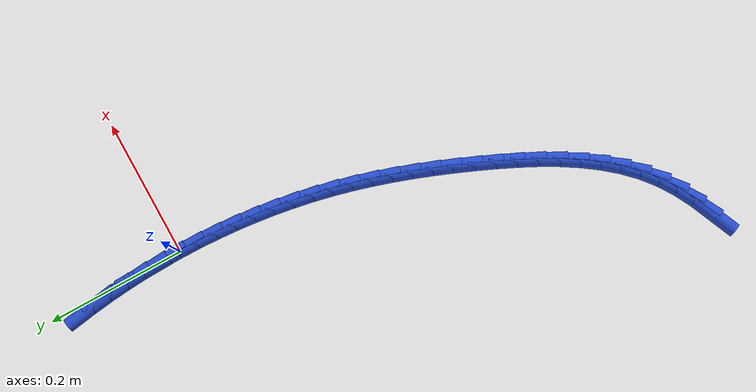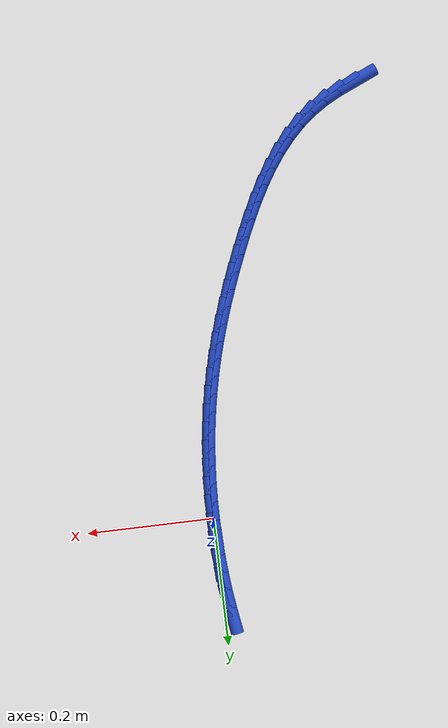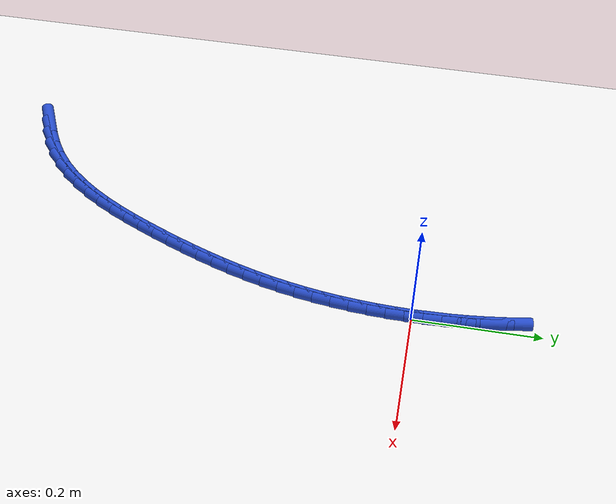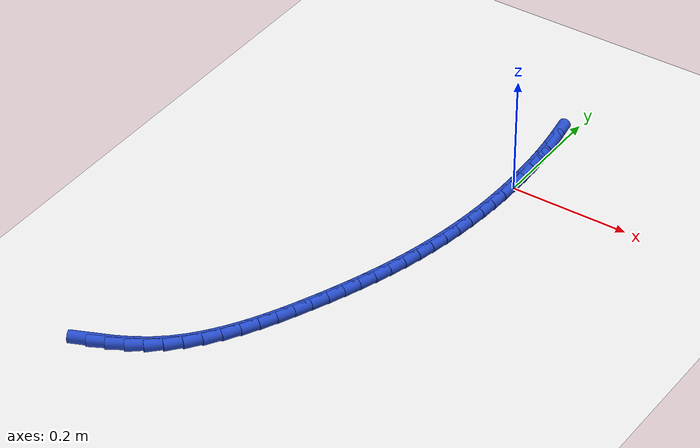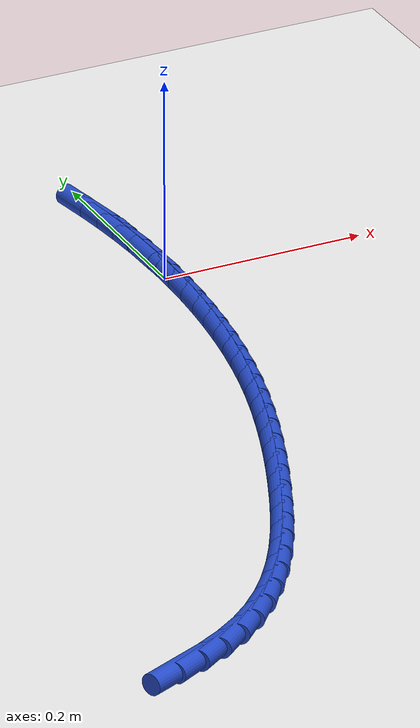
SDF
<sdf version="1.6">
 <world name="default">
  <model name="ground_plane">
   <static>1</static>
   <link name="link">
    <collision name="collision">
     <geometry><plane><normal>0 0 1</normal><size>100 100</size></plane></geometry>
     <surface><friction><ode><mu>100</mu><mu2>50</mu2></ode></friction></surface>
    </collision>
    <visual name="visual">
     <cast_shadows>0</cast_shadows>
     <geometry><plane><normal>0 0 1</normal><size>100 100</size></plane></geometry>
     <material>
      <script><uri>file://media/materials/scripts/gazebo.material</uri><name>Gazebo/WhiteGlow</name></script>
     </material>
    </visual>
   </link>
  </model>
  <model name="line">
   <link name="link_0">
    <pose>-3.0357660829594124e-18 -2.0816681711721685e-17 0.01 0 1.57 -1.5565837611192304</pose>
    <collision name="collision">
     <geometry><cylinder><radius>0.01</radius><length>0.08</length></cylinder></geometry>
    </collision>
    <visual name="visual">
     <material>
      <script><name>Gazebo/Blue</name><uri>file://media/materials/scripts/gazebo.material</uri></script>
     </material>
     <geometry><cylinder><radius>0.01</radius><length>0.08</length></cylinder></geometry>
    </visual>
   </link>
   <link name="link_1">
    <pose>-0.0004041169483302845 0.028431864242184076 0.01 0 1.57 -1.5284859204774366</pose>
    <collision name="collision">
     <geometry><cylinder><radius>0.01</radius><length>0.08</length></cylinder></geometry>
    </collision>
    <visual name="visual">
     <material>
      <script><name>Gazebo/Blue</name><uri>file://media/materials/scripts/gazebo.material</uri></script>
     </material>
     <geometry><cylinder><radius>0.01</radius><length>0.08</length></cylinder></geometry>
    </visual>
   </link>
   <link name="link_2">
    <pose>-0.0016050707239647663 0.056799283920314324 0.01 0 1.57 -1.5001406819887342</pose>
    <collision name="collision">
     <geometry><cylinder><radius>0.01</radius><length>0.08</length></cylinder></geometry>
    </collision>
    <visual name="visual">
     <material>
      <script><name>Gazebo/Blue</name><uri>file://media/materials/scripts/gazebo.material</uri></script>
     </material>
     <geometry><cylinder><radius>0.01</radius><length>0.08</length></cylinder></geometry>
    </visual>
   </link>
   <link name="link_3">
    <pose>-0.0036085361440548755 0.08510743116033789 0.01 0 1.57 -1.4716096335745636</pose>
    <collision name="collision">
     <geometry><cylinder><radius>0.01</radius><length>0.08</length></cylinder></geometry>
    </collision>
    <visual name="visual">
     <material>
      <script><name>Gazebo/Blue</name><uri>file://media/materials/scripts/gazebo.material</uri></script>
     </material>
     <geometry><cylinder><radius>0.01</radius><length>0.08</length></cylinder></geometry>
    </visual>
   </link>
   <link name="link_4">
    <pose>-0.006420188025752031 0.11336147808820196 0.01 0 1.57 -1.442956377245693</pose>
    <collision name="collision">
     <geometry><cylinder><radius>0.01</radius><length>0.08</length></cylinder></geometry>
    </collision>
    <visual name="visual">
     <material>
      <script><name>Gazebo/Blue</name><uri>file://media/materials/scripts/gazebo.material</uri></script>
     </material>
     <geometry><cylinder><radius>0.01</radius><length>0.08</length></cylinder></geometry>
    </visual>
   </link>
   <link name="link_5">
    <pose>-0.010045701186207663 0.14156659682985365 0.01 0 1.57 -1.4142457848235797</pose>
    <collision name="collision">
     <geometry><cylinder><radius>0.01</radius><length>0.08</length></cylinder></geometry>
    </collision>
    <visual name="visual">
     <material>
      <script><name>Gazebo/Blue</name><uri>file://media/materials/scripts/gazebo.material</uri></script>
     </material>
     <geometry><cylinder><radius>0.01</radius><length>0.08</length></cylinder></geometry>
    </visual>
   </link>
   <link name="link_263">
    <pose>-0.30598803627297033 -0.6657665539885202 0.01 0 1.57 0.4091721516461268</pose>
    <collision name="collision">
     <geometry><cylinder><radius>0.01</radius><length>0.08</length></cylinder></geometry>
    </collision>
    <visual name="visual">
     <material>
      <script><name>Gazebo/Blue</name><uri>file://media/materials/scripts/gazebo.material</uri></script>
     </material>
     <geometry><cylinder><radius>0.01</radius><length>0.08</length></cylinder></geometry>
    </visual>
   </link>
   <link name="link_264">
    <pose>-0.27999523678142824 -0.6544948459956088 0.01 0 1.57 0.4852670989772613</pose>
    <collision name="collision">
     <geometry><cylinder><radius>0.01</radius><length>0.08</length></cylinder></geometry>
    </collision>
    <visual name="visual">
     <material>
      <script><name>Gazebo/Blue</name><uri>file://media/materials/scripts/gazebo.material</uri></script>
     </material>
     <geometry><cylinder><radius>0.01</radius><length>0.08</length></cylinder></geometry>
    </visual>
   </link>
   <link name="link_265">
    <pose>-0.25532490465593866 -0.6414855881476383 0.01 0 1.57 0.5797110865254966</pose>
    <collision name="collision">
     <geometry><cylinder><radius>0.01</radius><length>0.08</length></cylinder></geometry>
    </collision>
    <visual name="visual">
     <material>
      <script><name>Gazebo/Blue</name><uri>file://media/materials/scripts/gazebo.material</uri></script>
     </material>
     <geometry><cylinder><radius>0.01</radius><length>0.08</length></cylinder></geometry>
    </visual>
   </link>
   <link name="link_266">
    <pose>-0.2322363259612794 -0.6263682119845824 0.01 0 1.57 0.6879322324826481</pose>
    <collision name="collision">
     <geometry><cylinder><radius>0.01</radius><length>0.08</length></cylinder></geometry>
    </collision>
    <visual name="visual">
     <material>
      <script><name>Gazebo/Blue</name><uri>file://media/materials/scripts/gazebo.material</uri></script>
     </material>
     <geometry><cylinder><radius>0.01</radius><length>0.08</length></cylinder></geometry>
    </visual>
   </link>
   <link name="link_267">
    <pose>-0.21093467268957697 -0.6088611130804109 0.01 0 1.57 0.7893013018491452</pose>
    <collision name="collision">
     <geometry><cylinder><radius>0.01</radius><length>0.08</length></cylinder></geometry>
    </collision>
    <visual name="visual">
     <material>
      <script><name>Gazebo/Blue</name><uri>file://media/materials/scripts/gazebo.material</uri></script>
     </material>
     <geometry><cylinder><radius>0.01</radius><length>0.08</length></cylinder></geometry>
    </visual>
   </link>
   <link name="link_268">
    <pose>-0.19135453436946342 -0.5891275270719579 0.01 0 1.57 0.8771481950598081</pose>
    <collision name="collision">
     <geometry><cylinder><radius>0.01</radius><length>0.08</length></cylinder></geometry>
    </collision>
    <visual name="visual">
     <material>
      <script><name>Gazebo/Blue</name><uri>file://media/materials/scripts/gazebo.material</uri></script>
     </material>
     <geometry><cylinder><radius>0.01</radius><length>0.08</length></cylinder></geometry>
    </visual>
   </link>
   <link name="link_269">
    <pose>-0.17334610118036284 -0.567469442903727 0.01 0 1.57 0.9517537637834611</pose>
    <collision name="collision">
     <geometry><cylinder><radius>0.01</radius><length>0.08</length></cylinder></geometry>
    </collision>
    <visual name="visual">
     <material>
      <script><name>Gazebo/Blue</name><uri>file://media/materials/scripts/gazebo.material</uri></script>
     </material>
     <geometry><cylinder><radius>0.01</radius><length>0.08</length></cylinder></geometry>
    </visual>
   </link>
   <link name="link_270">
    <pose>-0.15675953549017177 -0.5441888952426291 0.01 0 1.57 1.013984246985781</pose>
    <collision name="collision">
     <geometry><cylinder><radius>0.01</radius><length>0.08</length></cylinder></geometry>
    </collision>
    <visual name="visual">
     <material>
      <script><name>Gazebo/Blue</name><uri>file://media/materials/scripts/gazebo.material</uri></script>
     </material>
     <geometry><cylinder><radius>0.01</radius><length>0.08</length></cylinder></geometry>
    </visual>
   </link>
   <link name="link_271">
    <pose>-0.14144499966678697 -0.5195879187555755 0.01 0 1.57 1.064910814177203</pose>
    <collision name="collision">
     <geometry><cylinder><radius>0.01</radius><length>0.08</length></cylinder></geometry>
    </collision>
    <visual name="visual">
     <material>
      <script><name>Gazebo/Blue</name><uri>file://media/materials/scripts/gazebo.material</uri></script>
     </material>
     <geometry><cylinder><radius>0.01</radius><length>0.08</length></cylinder></geometry>
    </visual>
   </link>
   <link name="link_272">
    <pose>-0.1272526560781052 -0.49396854810947743 0.01 0 1.57 1.1055666043617902</pose>
    <collision name="collision">
     <geometry><cylinder><radius>0.01</radius><length>0.08</length></cylinder></geometry>
    </collision>
    <visual name="visual">
     <material>
      <script><name>Gazebo/Blue</name><uri>file://media/materials/scripts/gazebo.material</uri></script>
     </material>
     <geometry><cylinder><radius>0.01</radius><length>0.08</length></cylinder></geometry>
    </visual>
   </link>
   <link name="link_273">
    <pose>-0.11403266709202302 -0.4676328179712454 0.01 0 1.57 1.1368089499028444</pose>
    <collision name="collision">
     <geometry><cylinder><radius>0.01</radius><length>0.08</length></cylinder></geometry>
    </collision>
    <visual name="visual">
     <material>
      <script><name>Gazebo/Blue</name><uri>file://media/materials/scripts/gazebo.material</uri></script>
     </material>
     <geometry><cylinder><radius>0.01</radius><length>0.08</length></cylinder></geometry>
    </visual>
   </link>
   <link name="link_274">
    <pose>-0.10163519507643717 -0.44088276300779083 0.01 0 1.57 1.1592637409915667</pose>
    <collision name="collision">
     <geometry><cylinder><radius>0.01</radius><length>0.08</length></cylinder></geometry>
    </collision>
    <visual name="visual">
     <material>
      <script><name>Gazebo/Blue</name><uri>file://media/materials/scripts/gazebo.material</uri></script>
     </material>
     <geometry><cylinder><radius>0.01</radius><length>0.08</length></cylinder></geometry>
    </visual>
   </link>
   <link name="link_275">
    <pose>-0.08991073016473373 -0.4140197923707082 0.01 0 1.57 1.1764149609841157</pose>
    <collision name="collision">
     <geometry><cylinder><radius>0.01</radius><length>0.08</length></cylinder></geometry>
    </collision>
    <visual name="visual">
     <material>
      <script><name>Gazebo/Blue</name><uri>file://media/materials/scripts/gazebo.material</uri></script>
     </material>
     <geometry><cylinder><radius>0.01</radius><length>0.08</length></cylinder></geometry>
    </visual>
   </link>
   <link name="link_276">
    <pose>-0.07876517675772612 -0.38723956132914605 0.01 0 1.57 1.1950383231286983</pose>
    <collision name="collision">
     <geometry><cylinder><radius>0.01</radius><length>0.08</length></cylinder></geometry>
    </collision>
    <visual name="visual">
     <material>
      <script><name>Gazebo/Blue</name><uri>file://media/materials/scripts/gazebo.material</uri></script>
     </material>
     <geometry><cylinder><radius>0.01</radius><length>0.08</length></cylinder></geometry>
    </visual>
   </link>
   <link name="link_277">
    <pose>-0.06822179059373532 -0.36051376911840605 0.01 0 1.57 1.2159693091393993</pose>
    <collision name="collision">
     <geometry><cylinder><radius>0.01</radius><length>0.08</length></cylinder></geometry>
    </collision>
    <visual name="visual">
     <material>
      <script><name>Gazebo/Blue</name><uri>file://media/materials/scripts/gazebo.material</uri></script>
     </material>
     <geometry><cylinder><radius>0.01</radius><length>0.08</length></cylinder></geometry>
    </visual>
   </link>
   <link name="link_278">
    <pose>-0.0583187752735957 -0.33378558812378384 0.01 0 1.57 1.2391570610409284</pose>
    <collision name="collision">
     <geometry><cylinder><radius>0.01</radius><length>0.08</length></cylinder></geometry>
    </collision>
    <visual name="visual">
     <material>
      <script><name>Gazebo/Blue</name><uri>file://media/materials/scripts/gazebo.material</uri></script>
     </material>
     <geometry><cylinder><radius>0.01</radius><length>0.08</length></cylinder></geometry>
    </visual>
   </link>
   <link name="link_279">
    <pose>-0.04909433439814172 -0.3069981907305756 0.01 0 1.57 1.2645173472949855</pose>
    <collision name="collision">
     <geometry><cylinder><radius>0.01</radius><length>0.08</length></cylinder></geometry>
    </collision>
    <visual name="visual">
     <material>
      <script><name>Gazebo/Blue</name><uri>file://media/materials/scripts/gazebo.material</uri></script>
     </material>
     <geometry><cylinder><radius>0.01</radius><length>0.08</length></cylinder></geometry>
    </visual>
   </link>
   <link name="link_280">
    <pose>-0.040586671568208006 -0.2800947493240781 0.01 0 1.57 1.2919302297459716</pose>
    <collision name="collision">
     <geometry><cylinder><radius>0.01</radius><length>0.08</length></cylinder></geometry>
    </collision>
    <visual name="visual">
     <material>
      <script><name>Gazebo/Blue</name><uri>file://media/materials/scripts/gazebo.material</uri></script>
     </material>
     <geometry><cylinder><radius>0.01</radius><length>0.08</length></cylinder></geometry>
    </visual>
   </link>
   <link name="link_281">
    <pose>-0.03283399038462841 -0.2530184362895855 0.01 0 1.57 1.321238979563653</pose>
    <collision name="collision">
     <geometry><cylinder><radius>0.01</radius><length>0.08</length></cylinder></geometry>
    </collision>
    <visual name="visual">
     <material>
      <script><name>Gazebo/Blue</name><uri>file://media/materials/scripts/gazebo.material</uri></script>
     </material>
     <geometry><cylinder><radius>0.01</radius><length>0.08</length></cylinder></geometry>
    </visual>
   </link>
   <link name="link_282">
    <pose>-0.025874494448237622 -0.22571242401239458 0.01 0 1.57 1.352160594603671</pose>
    <collision name="collision">
     <geometry><cylinder><radius>0.01</radius><length>0.08</length></cylinder></geometry>
    </collision>
    <visual name="visual">
     <material>
      <script><name>Gazebo/Blue</name><uri>file://media/materials/scripts/gazebo.material</uri></script>
     </material>
     <geometry><cylinder><radius>0.01</radius><length>0.08</length></cylinder></geometry>
    </visual>
   </link>
   <link name="link_283">
    <pose>-0.019744673474925145 -0.19812390261477453 0.01 0 1.57 1.3832471882823167</pose>
    <collision name="collision">
     <geometry><cylinder><radius>0.01</radius><length>0.08</length></cylinder></geometry>
    </collision>
    <visual name="visual">
     <material>
      <script><name>Gazebo/Blue</name><uri>file://media/materials/scripts/gazebo.material</uri></script>
     </material>
     <geometry><cylinder><radius>0.01</radius><length>0.08</length></cylinder></geometry>
    </visual>
   </link>
   <link name="link_284">
    <pose>-0.01445629780432286 -0.17025801007146876 0.01 0 1.57 1.4135785395463123</pose>
    <collision name="collision">
     <geometry><cylinder><radius>0.01</radius><length>0.08</length></cylinder></geometry>
    </collision>
    <visual name="visual">
     <material>
      <script><name>Gazebo/Blue</name><uri>file://media/materials/scripts/gazebo.material</uri></script>
     </material>
     <geometry><cylinder><radius>0.01</radius><length>0.08</length></cylinder></geometry>
    </visual>
   </link>
   <link name="link_285">
    <pose>-0.010002571221197477 -0.1421634085938791 0.01 0 1.57 1.4432343588047882</pose>
    <collision name="collision">
     <geometry><cylinder><radius>0.01</radius><length>0.08</length></cylinder></geometry>
    </collision>
    <visual name="visual">
     <material>
      <script><name>Gazebo/Blue</name><uri>file://media/materials/scripts/gazebo.material</uri></script>
     </material>
     <geometry><cylinder><radius>0.01</radius><length>0.08</length></cylinder></geometry>
    </visual>
   </link>
   <link name="link_286">
    <pose>-0.006376245879328298 -0.11388981911938623 0.01 0 1.57 1.472316989475469</pose>
    <collision name="collision">
     <geometry><cylinder><radius>0.01</radius><length>0.08</length></cylinder></geometry>
    </collision>
    <visual name="visual">
     <material>
      <script><name>Gazebo/Blue</name><uri>file://media/materials/scripts/gazebo.material</uri></script>
     </material>
     <geometry><cylinder><radius>0.01</radius><length>0.08</length></cylinder></geometry>
    </visual>
   </link>
   <link name="link_287">
    <pose>-0.0035700739324946514 -0.08548696258537108 0.01 0 1.57 1.500927856748419</pose>
    <collision name="collision">
     <geometry><cylinder><radius>0.01</radius><length>0.08</length></cylinder></geometry>
    </collision>
    <visual name="visual">
     <material>
      <script><name>Gazebo/Blue</name><uri>file://media/materials/scripts/gazebo.material</uri></script>
     </material>
     <geometry><cylinder><radius>0.01</radius><length>0.08</length></cylinder></geometry>
    </visual>
   </link>
   <link name="link_288">
    <pose>-0.0015768075344758448 -0.0570045599292145 0.01 0 1.57 1.5291677803969173</pose>
    <collision name="collision">
     <geometry><cylinder><radius>0.01</radius><length>0.08</length></cylinder></geometry>
    </collision>
    <visual name="visual">
     <material>
      <script><name>Gazebo/Blue</name><uri>file://media/materials/scripts/gazebo.material</uri></script>
     </material>
     <geometry><cylinder><radius>0.01</radius><length>0.08</length></cylinder></geometry>
    </visual>
   </link>
   <link name="link_289">
    <pose>-0.00038919883905119213 -0.028492332088297205 0.01 0 1.57 1.5571374015178738</pose>
    <collision name="collision">
     <geometry><cylinder><radius>0.01</radius><length>0.08</length></cylinder></geometry>
    </collision>
    <visual name="visual">
     <material>
      <script><name>Gazebo/Blue</name><uri>file://media/materials/scripts/gazebo.material</uri></script>
     </material>
     <geometry><cylinder><radius>0.01</radius><length>0.08</length></cylinder></geometry>
    </visual>
   </link>
   <link name="link_290">
    <pose>-7.806255641895632e-18 -6.245004513516506e-17 0.01 0 1.57 -1.5566549483081322</pose>
    <collision name="collision">
     <geometry><cylinder><radius>0.01</radius><length>0.08</length></cylinder></geometry>
    </collision>
    <visual name="visual">
     <material>
      <script><name>Gazebo/Blue</name><uri>file://media/materials/scripts/gazebo.material</uri></script>
     </material>
     <geometry><cylinder><radius>0.01</radius><length>0.08</length></cylinder></geometry>
    </visual>
   </link>
   <link name="link_291">
    <pose>-0.00040196317110157906 0.0284227153982952 0.01 0 1.57 -1.5289220270102413</pose>
    <collision name="collision">
     <geometry><cylinder><radius>0.01</radius><length>0.08</length></cylinder></geometry>
    </collision>
    <visual name="visual">
     <material>
      <script><name>Gazebo/Blue</name><uri>file://media/materials/scripts/gazebo.material</uri></script>
     </material>
     <geometry><cylinder><radius>0.01</radius><length>0.08</length></cylinder></geometry>
    </visual>
   </link>
   <link name="link_292">
    <pose>-0.0015878405061352987 0.05672609316921048 0.01 0 1.57 -1.5428122737307297</pose>
    <collision name="collision">
     <geometry><cylinder><radius>0.01</radius><length>0.08</length></cylinder></geometry>
    </collision>
    <visual name="visual">
     <material>
      <script><name>Gazebo/Blue</name><uri>file://media/materials/scripts/gazebo.material</uri></script>
     </material>
     <geometry><cylinder><radius>0.01</radius><length>0.08</length></cylinder></geometry>
    </visual>
   </link>
  </model>
 </world>
</sdf>
